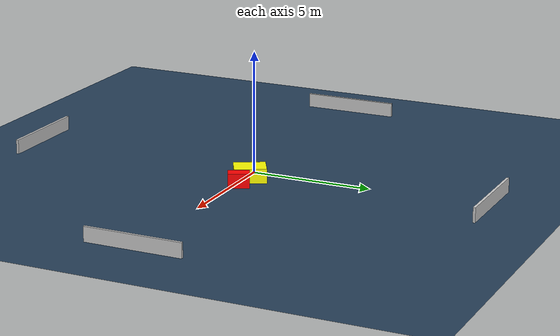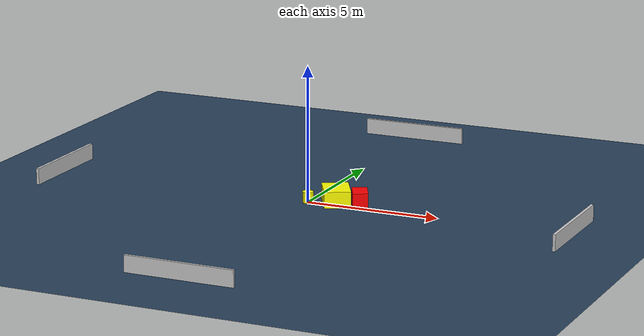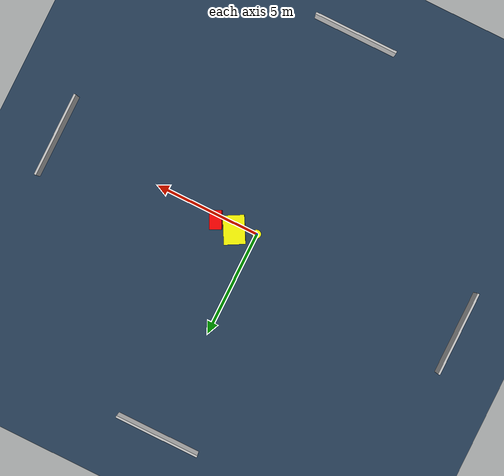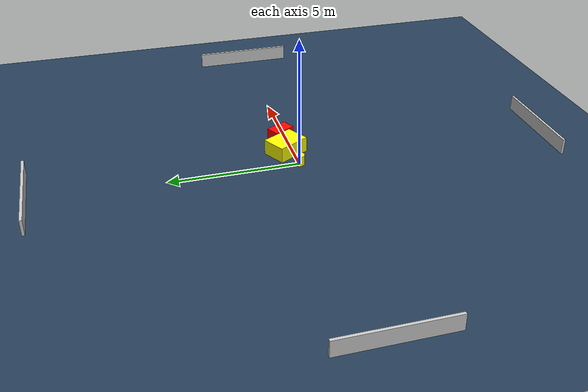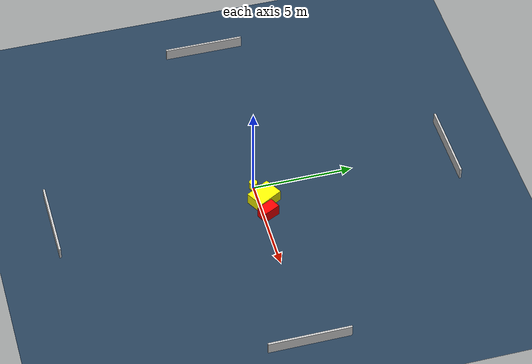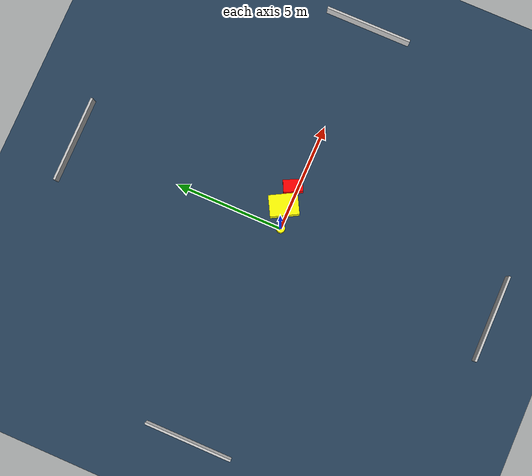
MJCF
<?xml version="1.0" ?>
<mujoco model="generated_environment">
  <option timestep="0.01" integrator="RK4" cone="elliptic"/>
  <default>
    <geom density="1"/>
  </default>
  <asset>
    <texture builtin="gradient" height="3072" name="skybox" rgb1="0.3 0.5 0.7" rgb2="0 0 0" type="skybox" width="512"/>
    <texture builtin="checker" height="300" name="groundplane" rgb1="0.2 0.3 0.4" rgb2="0.1 0.2 0.3" type="2d" width="300"/>
    <material name="groundplane" reflectance="0.2" texrepeat="5 5" texture="groundplane"/>
  </asset>
  <worldbody>
    <light dir="0 0 -1" directional="true" pos="0 0 1.5"/>
    <geom condim="3" friction="0.5 0.005 0.001" material="groundplane" name="floor" pos="0 0 0" size="0 0 0.05" type="plane"/>
    <body name="walls">
      <geom name="wall_1" condim="4" pos="-10.0 0.0 0.3" rgba="0.800000011920929 0.800000011920929 0.800000011920929 1.0" size="0.05 2.0 0.3" type="box"/>
      <geom name="wall_2" condim="4" pos="10.0 0.0 0.3" rgba="0.800000011920929 0.800000011920929 0.800000011920929 1.0" size="0.05 2.0 0.3" type="box"/>
      <geom name="wall_3" condim="4" pos="0.0 -10.0 0.3" rgba="0.800000011920929 0.800000011920929 0.800000011920929 1.0" size="2.0 0.05 0.3" type="box"/>
      <geom name="wall_4" condim="4" pos="0.0 10.0 0.3" rgba="0.800000011920929 0.800000011920929 0.800000011920929 1.0" size="2.0 0.05 0.3" type="box"/>
    </body>
    <body name="robot">
      <joint name="joint_x" type="slide" pos="0 0 0" axis="1 0 0"/>
      <joint name="joint_y" type="slide" pos="0 0 0" axis="0 1 0"/>
      <geom name="robot" type="cylinder" pos="0.0 0.0 0.2" size="0.2 0.2 0.0" mass="5.0" friction="1.0 0.005 0.0001" condim="4" rgba="1.0 1.0 0.0 1.0"/>
    </body>
    <body name="obstacle_1_movable">
      <geom name="obstacle_1_movable" condim="4" pos="0.9862324100387497 0.27480347038476677 0.3" euler="0 0 298.72859144920994" friction="0.0 0.005 0.001" rgba="1.0 1.0 0.0 1.0" size="0.6533790676177775 0.483759399504873 0.3" type="box" mass="0.1"/>
      <joint type="free"/>
    </body>
    <body name="obstacle_2_static">
      <geom name="obstacle_2_static" condim="4" pos="1.9248484925253153 0.23915495815385515 0.3" euler="0 0 26.197098541087648" friction="0.0 0.005 0.001" rgba="1.0 0.0 0.0 1.0" size="0.27862293558852547 0.4355557847898776 0.3" type="box"/>
    </body>
  </worldbody>
  <actuator>
    <motor name="actuator_x" joint="joint_x" gear="1" ctrlrange="-1 1"/>
    <motor name="actuator_y" joint="joint_y" gear="1" ctrlrange="-1 1"/>
  </actuator>
</mujoco>
